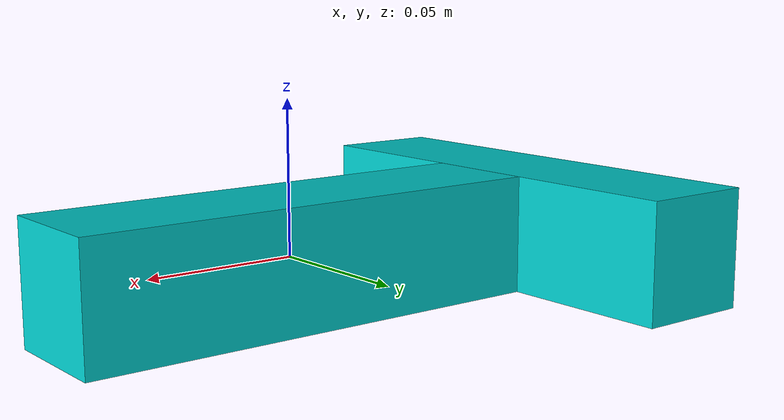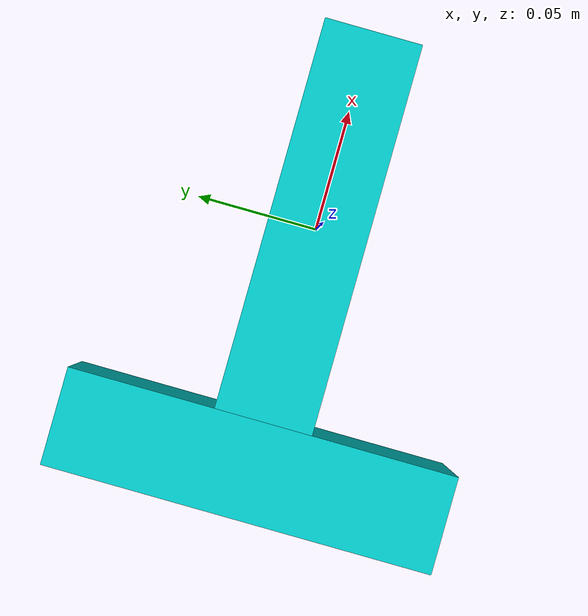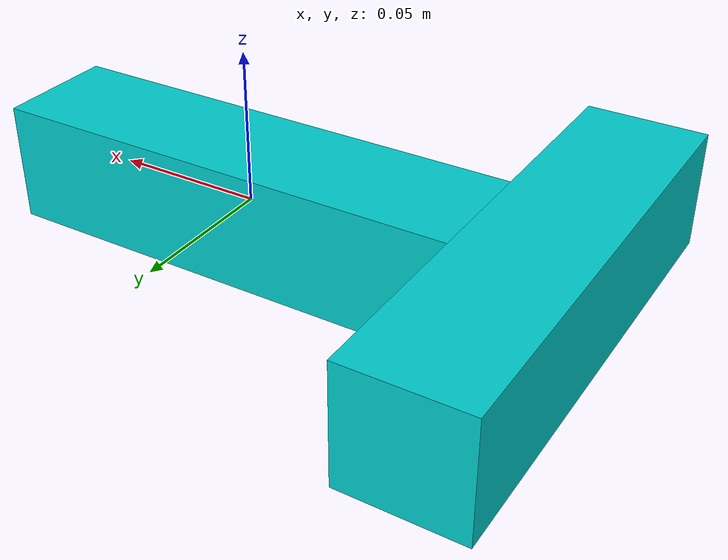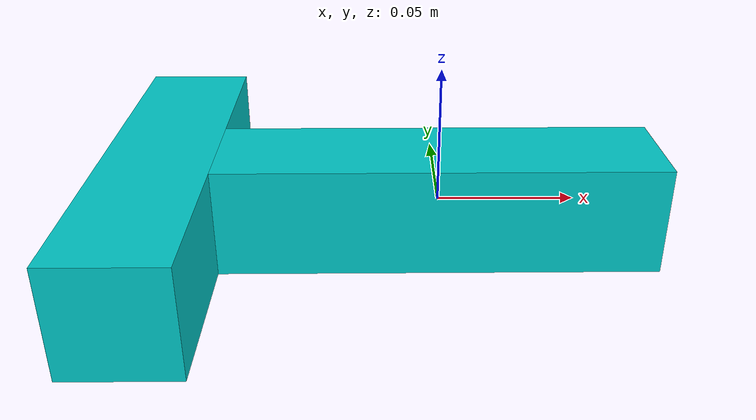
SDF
<?xml version="1.0"?>
<sdf version="1.7">
  <model name="t_shape">
    <link name="vertical_link">
      <inertial>
        <pose>0 0 0 0 0 0</pose>
        <mass>0.025</mass>
        <inertia>
            <ixx>0.000006665</ixx>
            <iyy>0.000056665</iyy>
            <izz>0.000056665</izz>
            <ixy>0.0</ixy>
            <ixz>0.0</ixz>
            <iyz>0.0</iyz>
        </inertia>
      </inertial>
      <visual name="vertical_link">
        <pose>0 0 0 0 0 0</pose>
        <geometry>
          <box>
            <size>0.16 0.04 0.04</size>
          </box>
        </geometry>
        <material>
          <diffuse>0 0.8 0.8 1</diffuse>
        </material>
      </visual>
      <collision name="vertical_link_volume">
        <pose>0 0 0 0 0 0</pose>
        <geometry>
          <box>
            <size>0.16 0.04 0.04</size>
          </box>
        </geometry>
        <drake:proximity_properties>
          <drake:compliant_hydroelastic/>
          <drake:hydroelastic_modulus> 3.0e7 </drake:hydroelastic_modulus>
          <drake:mesh_resolution_hint> 0.18 </drake:mesh_resolution_hint>
          <drake:hunt_crossley_dissipation>10</drake:hunt_crossley_dissipation>
          <drake:mu_dynamic>0.3</drake:mu_dynamic>
        </drake:proximity_properties>
      </collision>
      <collision name= "top_left_sphere">
        <pose> -0.12 0.08 -0.02 0 0 0 </pose>
        <geometry>
          <sphere>
            <radius>0.001</radius>
          </sphere>
        </geometry>
      </collision>
      <collision name= "top_right_sphere">
        <pose> -0.12 -0.08 -0.02 0 0 0 </pose>
        <geometry>
          <sphere>
            <radius>0.001</radius>
          </sphere>
        </geometry>
      </collision>
      <collision name= "bottom_sphere">
        <pose> 0.08 0.0 -0.02 0 0 0 </pose>
        <geometry>
          <sphere>
            <radius>0.001</radius>
          </sphere>
        </geometry>
      </collision>
    </link>

    <link name="horizontal_link">
      <inertial>
        <pose>-0.10 0 0 0 0 1.5708</pose>
        <mass>0.025</mass>
        <inertia>
            <ixx>0.000006665</ixx>
            <iyy>0.000056665</iyy>
            <izz>0.000056665</izz>
            <ixy>0.0</ixy>
            <ixz>0.0</ixz>
            <iyz>0.0</iyz>
        </inertia>
      </inertial>
      <visual name="horizontal_link">
        <pose>-0.10 0 0 0 0 1.5708</pose>
        <geometry>
          <box>
            <size>0.16 0.04 0.04</size>
          </box>
        </geometry>
        <material>
          <diffuse>0 0.8 0.8 1</diffuse>
        </material>
      </visual>
      <collision name="horizontal_link_volume">
        <pose>-0.10 0 0 0 0 1.5708</pose>
            <geometry>
          <box>
            <size>0.16 0.04 0.04</size>
          </box>
        </geometry>
        <drake:proximity_properties>
          <drake:compliant_hydroelastic/>
          <drake:hydroelastic_modulus> 3.0e7 </drake:hydroelastic_modulus>
          <drake:mesh_resolution_hint> 0.18 </drake:mesh_resolution_hint>
          <drake:hunt_crossley_dissipation>10</drake:hunt_crossley_dissipation>
          <drake:mu_dynamic>0.3</drake:mu_dynamic>
        </drake:proximity_properties>
      </collision>
    </link>

    <joint name="fixed_joint" type="fixed">
      <parent>vertical_link</parent>
      <child>horizontal_link</child>
      <pose>0 0 0 0 0 0</pose>
    </joint>

  </model>
</sdf>
